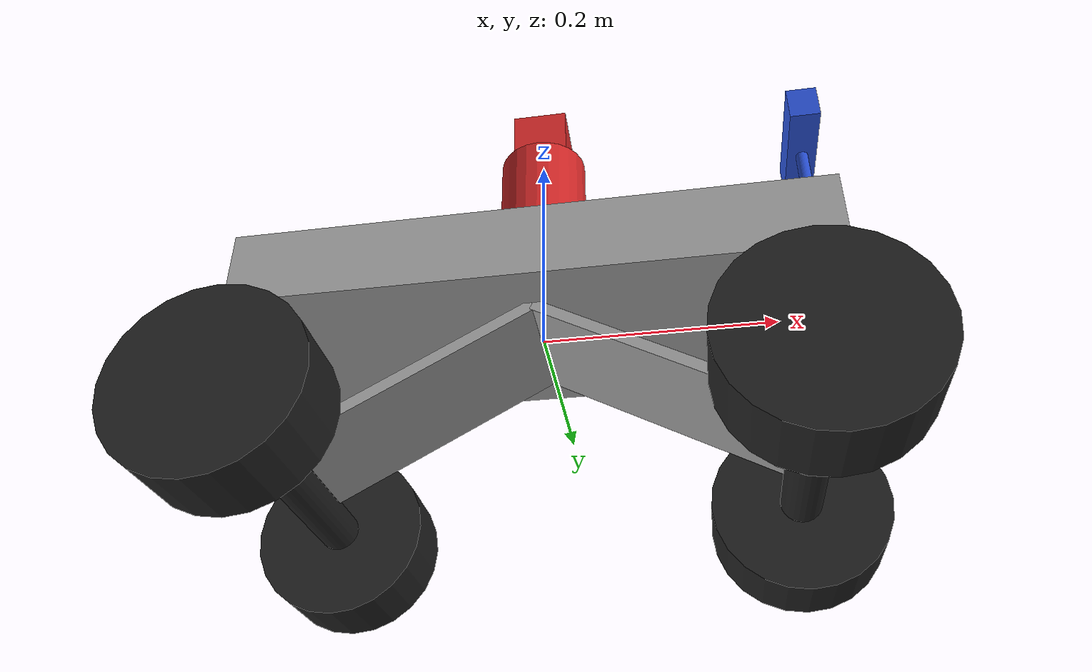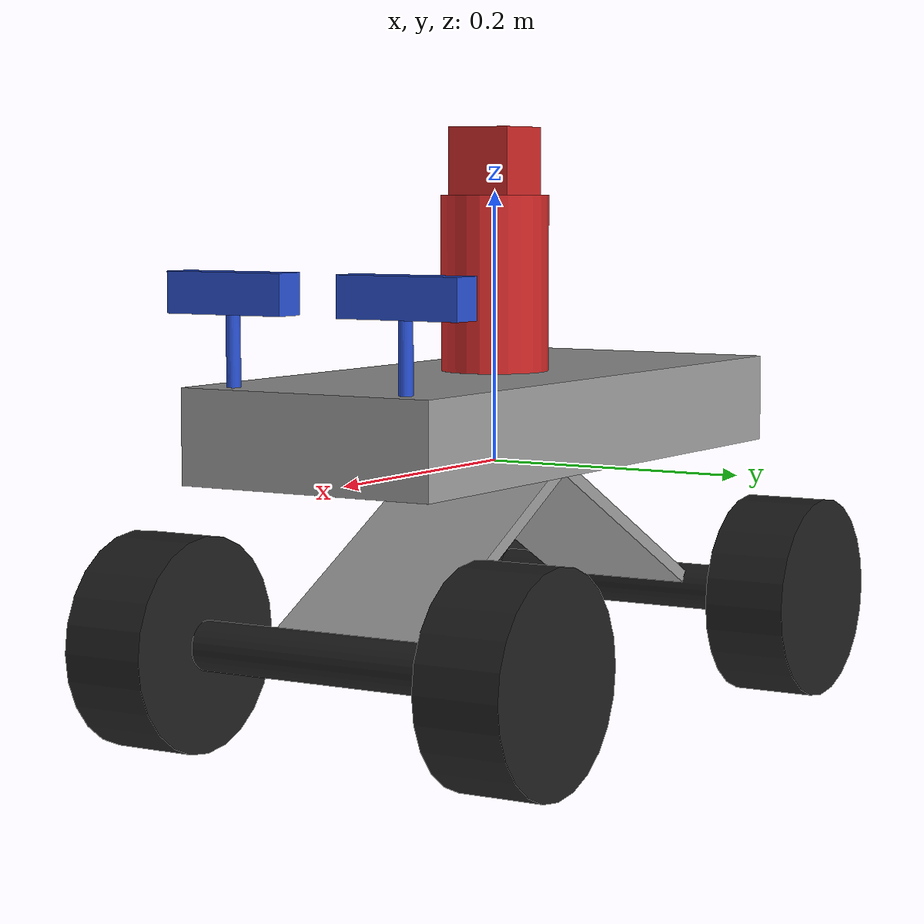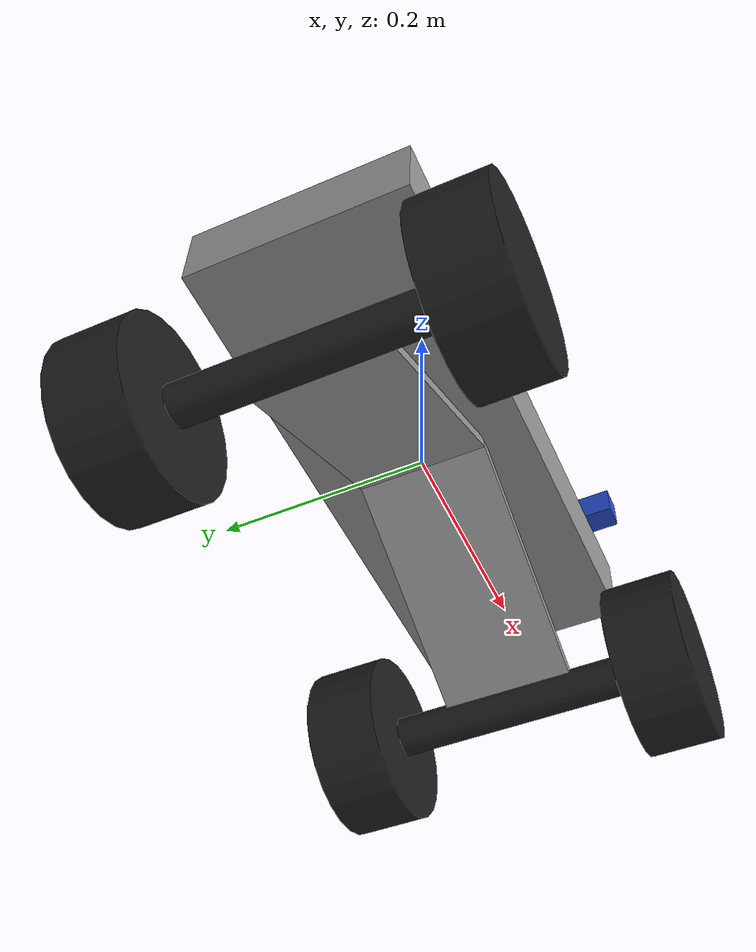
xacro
<?xml version="1.0"?>
<robot name="jetsoncar" xmlns:xacro="http://www.ros.org/wiki/xacro">

	<!-- X axis direction is forward, Y axis direction is left -->

	<xacro:include filename="$(find jetsoncar_description)/urdf/functions.xacro" />
	<xacro:include filename="$(find jetsoncar_description)/urdf/physical.xacro" />
	<xacro:include filename="$(find jetsoncar_description)/urdf/joints.xacro" />
	<xacro:include filename="$(find jetsoncar_description)/urdf/transmissions.xacro" />

	<link name="base_link" />

	<link name="imu">
		<visual>
			<material name="grey"/>
			<xacro:imu_geometry/>
		</visual>
		<collision>
			<xacro:imu_geometry/>
		</collision>
		<inertial>
			<xacro:imu_inertial/>
		</inertial>
	</link>
	<xacro:fixed_offset_joint parent="baseplate" child="imu" offset="0 0 ${imu_height/2}"/> <!-- because origin is in the center, we want the IMU to stand on the baseplate -->

	<link name="baseplate">
		<visual>
			<material name="acrylic"/>
			<xacro:baseplate_geometry/>
		</visual>
		<collision>
			<xacro:baseplate_geometry/>
		</collision>
		<inertial>
			<xacro:baseplate_inertial/>
		</inertial>
	</link>
	<xacro:fixed_offset_joint parent="base_link" child="baseplate" offset="0 0 0"/>

	<link name="front_mount">
		<visual>
			<material name="grey"/>
			<xacro:front_mount_geometry/>
		</visual>
		<collision>
			<xacro:front_mount_geometry/>
		</collision>
		<inertial>
			<xacro:front_mount_inertial/>
		</inertial>
	</link>
	<xacro:fixed_offset_joint parent="baseplate" child="front_mount" offset="${front_to_rear_wheel_center/4} 0 -${baseplate_to_wheel_center/2}"/>

	<link name="rear_mount">
		<visual>
			<material name="grey"/>
			<xacro:rear_mount_geometry/>
		</visual>
		<collision>
			<xacro:rear_mount_geometry/>
		</collision>
		<inertial>
			<xacro:rear_mount_inertial/>
		</inertial>
	</link>
	<xacro:fixed_offset_joint parent="baseplate" child="rear_mount" offset="-${front_to_rear_wheel_center/4} 0 -${baseplate_to_wheel_center/2}"/>

	<link name="front_shaft">
		<visual>
			<material name="black"/>
			<xacro:shaft_geometry/>
		</visual>
		<collision>
			<xacro:shaft_geometry/>
		</collision>
		<inertial>
			<xacro:shaft_inertial/>
		</inertial>
	</link>
	<xacro:fixed_offset_joint parent="front_mount" child="front_shaft" offset="${front_to_rear_wheel_center/4} 0 -${baseplate_to_wheel_center/2}"/>

	<link name="rear_shaft">
		<visual>
			<material name="black"/>
			<xacro:shaft_geometry/>
		</visual>
		<collision>
			<xacro:shaft_geometry/>
		</collision>
		<inertial>
			<xacro:shaft_inertial/>
		</inertial>
	</link>
	<xacro:fixed_offset_joint parent="rear_mount" child="rear_shaft" offset="-${front_to_rear_wheel_center/4} 0 -${baseplate_to_wheel_center/2}"/>

	<link name="front_right_hinge">
		<visual>
			<material name="white"/>
			<xacro:hinge_geometry/>
		</visual>
		<inertial>
			<xacro:hinge_inertial/>
		</inertial>
	</link>
	<xacro:hinge_joint parent="front_shaft" child="front_right_hinge" offset="0 -${left_to_right_wheel_center/2} 0"/>
	<xacro:hinge_transmission hinge="front_right_hinge"/>

	<link name="front_left_hinge">
		<visual>
			<material name="white"/>
			<xacro:hinge_geometry/>
		</visual>
		<inertial>
			<xacro:hinge_inertial/>
		</inertial>
	</link>
	<xacro:hinge_joint parent="front_shaft" child="front_left_hinge" offset="0 ${left_to_right_wheel_center/2} 0"/>
	<xacro:hinge_transmission hinge="front_left_hinge"/>

	<link name="front_right_wheel">
		<visual>
			<material name="black"/>
			<xacro:wheel_geometry/>
		</visual>
		<collision>
			<xacro:wheel_geometry/>
			<!-- mu=The friction coefficient, kp=Stiffness coefficient, kd=Dampening coefficient -->
		</collision>
		<inertial>
			<xacro:wheel_inertial/>
		</inertial>
	</link>
	<xacro:wheel_joint parent="front_right_hinge" child="front_right_wheel" offset="0 0 0"/>
	<xacro:wheel_transmission wheel="front_right_wheel"/>

	<link name="front_left_wheel">
		<visual>
			<material name="black"/>
			<xacro:wheel_geometry/>
		</visual>
		<collision>
			<xacro:wheel_geometry/>
			<!-- mu=The friction coefficient, kp=Stiffness coefficient, kd=Dampening coefficient -->
		</collision>
		<inertial>
			<xacro:wheel_inertial/>
		</inertial>
	</link>
	<xacro:wheel_joint parent="front_left_hinge" child="front_left_wheel" offset="0 0 0"/>
	<xacro:wheel_transmission wheel="front_left_wheel"/>

	<link name="rear_right_wheel">
		<visual>
			<material name="black"/>
			<xacro:wheel_geometry/>
		</visual>
		<collision>
			<xacro:wheel_geometry/>
			<!-- mu=The friction coefficient, kp=Stiffness coefficient, kd=Dampening coefficient -->
		</collision>
		<inertial>
			<xacro:wheel_inertial/>
		</inertial>
	</link>
	<xacro:wheel_joint parent="rear_shaft" child="rear_right_wheel" offset="0 -${left_to_right_wheel_center/2} 0"/>
	<xacro:wheel_transmission wheel="rear_right_wheel"/>

	<link name="rear_left_wheel">
		<visual>
			<material name="black"/>
			<xacro:wheel_geometry/>
		</visual>
		<collision>
			<xacro:wheel_geometry/>
			<!-- mu=The friction coefficient, kp=Stiffness coefficient, kd=Dampening coefficient -->
		</collision>
		<inertial>
			<xacro:wheel_inertial/>
		</inertial>
	</link>
	<xacro:wheel_joint parent="rear_shaft" child="rear_left_wheel" offset="0 ${left_to_right_wheel_center/2} 0"/>
	<xacro:wheel_transmission wheel="rear_left_wheel"/>

	<!-- Sensors -->
	<link name="left_camera_mount">
		<visual>
			<material name="blue"/>
			<xacro:camera_mount_geometry/>
		</visual>
		<collision>
			<xacro:camera_mount_geometry/>
		</collision>
		<inertial>
			<xacro:camera_mount_inertial/>
		</inertial>
	</link>
	<xacro:fixed_offset_joint parent="baseplate" child="left_camera_mount" offset="${baseplate_length/2-baseplate_frontedge_to_camera} ${camera_disparity/2} ${baseplate_thickness}"/>

	<link name="left_camera">
		<visual>
			<material name="blue"/>
			<xacro:camera_geometry/>
		</visual>
		<collision>
			<xacro:camera_geometry/>
		</collision>
		<inertial>
			<xacro:camera_inertial/>
		</inertial>
	</link>
	<xacro:fixed_offset_joint parent="left_camera_mount" child="left_camera" offset="0 0 ${camera_mount_height+camera_height/2}"/>

	<link name="right_camera_mount">
		<visual>
			<material name="blue"/>
			<xacro:camera_mount_geometry/>
		</visual>
		<collision>
			<xacro:camera_mount_geometry/>
		</collision>
		<inertial>
			<xacro:camera_mount_inertial/>
		</inertial>
	</link>
	<xacro:fixed_offset_joint parent="baseplate" child="right_camera_mount" offset="${baseplate_length/2-baseplate_frontedge_to_camera} -${camera_disparity/2} ${baseplate_thickness}"/>

	<link name="right_camera">
		<visual>
			<material name="blue"/>
			<xacro:camera_geometry/>
		</visual>
		<collision>
			<xacro:camera_geometry/>
		</collision>
		<inertial>
			<xacro:camera_inertial/>
		</inertial>
	</link>
	<xacro:fixed_offset_joint parent="right_camera_mount" child="right_camera" offset="0 0 ${camera_mount_height+camera_height/2}"/>

	<link name="lidar_mount">
		<visual>
			<material name="red"/>
			<xacro:lidar_mount_geometry/>
		</visual>
		<collision>
			<xacro:lidar_mount_geometry/>
		</collision>
		<inertial>
			<xacro:lidar_mount_inertial/>
		</inertial>
	</link>
	<xacro:fixed_offset_joint parent="baseplate" child="lidar_mount" offset="0 0 ${baseplate_thickness}"/>

	<link name="lidar">
		<visual>
			<material name="red"/>
			<xacro:lidar_geometry/>
		</visual>
		<collision>
			<xacro:lidar_geometry/>
		</collision>
		<inertial>
			<xacro:lidar_inertial/>
		</inertial>
	</link>
	<xacro:fixed_offset_joint parent="lidar_mount" child="lidar" offset="0 0 ${lidar_mount_height}"/>

	<!-- Link Gazebo and ROS - this has to happen as the last thing -->
	<xacro:include filename="$(find jetsoncar_description)/urdf/gazebo.xacro" />
	<xacro:include filename="$(find jetsoncar_description)/urdf/materials.xacro" />
</robot>

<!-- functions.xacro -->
<robot name="jetsoncar" xmlns:xacro="http://www.ros.org/wiki/xacro">

	<!-- Based on https://en.wikipedia.org/wiki/List_of_moments_of_inertia -->
	<xacro:macro name="box_inertial" params="mass width length height">
		<mass value="${mass}" />
		<inertia ixx="${1/12*mass*(width*width+height*height)}"
			 ixy="0"
			 ixz="0"
			 iyy="${1/12*mass*(length*length+height*height)}"
			 iyz="0"
			 izz="${1/12*mass*(width*width+length*length)}"
		/>
	</xacro:macro>

	<xacro:macro name="cylinder_inertial" params="mass radius length">
		<mass value="${mass}" />
		<inertia ixx="${1/12*mass*(3*radius*radius+length*length)}"
			 ixy="0"
			 ixz="0"
			 iyy="${1/12*mass*(3*radius*radius+length*length)}"
			 iyz="0"
			 izz="${1/2*mass*radius*radius}"
		/>
	</xacro:macro>

</robot>

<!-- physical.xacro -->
<robot name="jetsoncar" xmlns:xacro="http://www.ros.org/wiki/xacro">

	<!-- X axis direction is forward, Y axis direction is left -->

	<!-- IMU related properties -->
	<xacro:property name="imu_width" value="0.05" />
	<xacro:property name="imu_length" value="0.05" />
	<xacro:property name="imu_height" value="0.03" />

	<!-- Wheel related properties -->
	<xacro:property name="wheel_diameter" value="0.155" />
	<xacro:property name="wheel_thickness" value="0.064" />
	<xacro:property name="wheel_weight" value="0.150" />

	<!-- suspension stiffness, damping, and limits -->
	<xacro:property name="susp_travel" value="${wheel_diameter/2}"/>
	<xacro:property name="susp_lower" value="${-susp_travel/2}"/>
	<xacro:property name="susp_upper" value="${susp_travel/2}"/>
	<xacro:property name="susp_damping" value="70"/>
	<xacro:property name="susp_stiffness" value="5"/>
	<xacro:property name="susp_spring_center" value="0.05"/>

	<!-- RC car physical layout -->
	<xacro:property name="front_to_rear_wheel_center" value="0.42" />
	<xacro:property name="left_to_right_wheel_center" value="0.285" />
	<xacro:property name="baseplate_to_wheel_center" value="0.118" />
	<xacro:property name="front_to_rear_wheel_center" value="0.42" />
	<xacro:property name="front_to_rear_wheel_center" value="0.42" />

	<!-- Baseplate related properties -->
	<xacro:property name="baseplate_width" value="0.20" />
	<xacro:property name="baseplate_length" value="0.50" />
	<xacro:property name="baseplate_thickness" value="0.0675" />
	<xacro:property name="baseplate_weight" value="1.000" />

	<!-- Shaft and mount related properties -->
	<xacro:property name="mount_weight" value="0.500" />
	<xacro:property name="shaft_weight" value="0.100" />

	<!-- Camera related properties -->
	<xacro:property name="camera_width" value="0.094" />
	<xacro:property name="camera_height" value="0.029" />
	<xacro:property name="camera_depth" value="0.024" />
	<xacro:property name="camera_weight" value="0.162" />
	<xacro:property name="baseplate_frontedge_to_camera" value="0.02" />
	<xacro:property name="camera_mount_height" value="0.05" />
	<xacro:property name="camera_mount_diameter" value="0.01" />
	<xacro:property name="camera_disparity" value="0.14" />

	<!-- LiDAR related properties -->
	<xacro:property name="lidar_width" value="0.05" />
	<xacro:property name="lidar_length" value="0.05" />
	<xacro:property name="lidar_height" value="0.05" />
	<xacro:property name="lidar_weight" value="0.200" />
	<xacro:property name="lidar_mount_diameter" value="0.08" />
	<xacro:property name="lidar_mount_height" value="0.13" />

	<!-- Steering related properties -->
	<xacro:property name="steering_wheel_angle_limit" value="${20/180*pi}" />

	<!-- IMU -->
	<xacro:macro name="imu_geometry">
		<origin xyz="0 0 0" rpy="0 0 0" /> <!-- origin (0,0,0) is in the center of the box -->
		<geometry>
			<box size="${imu_length} ${imu_width} ${imu_height}"/> <!-- 50x50x30 mm, Please confirm against 3D drawings -->
		</geometry>
	</xacro:macro>
	<xacro:macro name="imu_inertial">
		<origin xyz="0 0 0" rpy="0 0 0" /> <!-- origin (0,0,0) is in the center of the box -->
		<xacro:box_inertial mass="0.010" length="${imu_length}" width="${imu_width}" height="${imu_height}" /> <!-- 10 grams -->
	</xacro:macro>

	<!-- Baseplate -->
	<xacro:macro name="baseplate_geometry">
		<origin xyz="0 0 ${baseplate_thickness/2}" rpy="0 0 0" /> <!-- origin (0,0,0) is in the center of the box, so place the origin of this in the bottom of baseplate -->
		<geometry>
			<box size="${baseplate_length} ${baseplate_width} ${baseplate_thickness}"/> <!-- 50x20x6.75 cm, X-axis is front of vehicle -->
		</geometry>
	</xacro:macro>
	<xacro:macro name="baseplate_inertial">
		<origin xyz="0 0 ${baseplate_thickness/2}" rpy="0 0 0" /> <!-- origin (0,0,0) is in the center of the box, so place the origin of this in the bottom of baseplate -->
		<xacro:box_inertial mass="${baseplate_weight}" length="${baseplate_length}" width="${baseplate_width}" height="${baseplate_thickness}" />
	</xacro:macro>

	<!-- Mount -->
	<xacro:macro name="front_mount_geometry">
		<origin xyz="0 0 0" rpy="0 0.5 0" /> <!-- origin (0,0,0) is in the center of the box -->
		<geometry>
			<box size="0.24 0.12 0.01"/>
		</geometry>
	</xacro:macro>
	<xacro:macro name="rear_mount_geometry">
		<origin xyz="0 0 0" rpy="0 -0.5 0" /> <!-- origin (0,0,0) is in the center of the box -->
		<geometry>
			<box size="0.24 0.12 0.01"/>
		</geometry>
	</xacro:macro>
	<xacro:macro name="front_mount_inertial">
		<origin xyz="0 0 0" rpy="0 0.5 0" /> <!-- origin (0,0,0) is in the center of the box -->
		<xacro:box_inertial mass="${mount_weight}" length="0.24" width="0.12" height="0.01" />
	</xacro:macro>
	<xacro:macro name="rear_mount_inertial">
		<origin xyz="0 0 0" rpy="0 -0.5 0" /> <!-- origin (0,0,0) is in the center of the box -->
		<xacro:box_inertial mass="${mount_weight}" length="0.24" width="0.12" height="0.01" />
	</xacro:macro>

	<!-- Shaft -->
	<xacro:macro name="shaft_geometry">
		<origin xyz="0 0 0" rpy="1.570796327 0 0" /> <!-- origin (0,0,0) is in the center of the cylinder -->
		<geometry>
			<cylinder length="${left_to_right_wheel_center}" radius="0.018"/> <!-- confirm length between wheels -->
		</geometry>
	</xacro:macro>
	<xacro:macro name="shaft_inertial">
		<origin xyz="0 0 0" rpy="1.570796327 0 0" /> <!-- origin (0,0,0) is in the center of the cylinder -->
		<xacro:cylinder_inertial mass="${shaft_weight}" radius="0.018" length="${left_to_right_wheel_center}" />
	</xacro:macro>

	<!-- Hinge -->
	<xacro:macro name="hinge_geometry">
		<origin xyz="0 0 0" rpy="0 0 0" />
		<geometry>
			<sphere radius="0.015"/>
		</geometry>
	</xacro:macro>
	<xacro:macro name="hinge_inertial">
		<origin xyz="0 0 0" rpy="0 0 0" />
		<mass value="0.05" />
		<inertia ixx="1e-6" ixy="0" ixz="0" iyy="1e-6" iyz="0" izz="1e-6" /> <!-- small inertia -->
	</xacro:macro>

	<!-- Wheel -->
	<xacro:macro name="wheel_geometry">
		<origin xyz="0 0 0" rpy="1.570796327 0 0" /> <!-- origin (0,0,0) is in the center of the cylinder -->
		<geometry>
			<cylinder length="${wheel_thickness}" radius="${wheel_diameter/2}"/>
		</geometry>
	</xacro:macro>
	<xacro:macro name="wheel_inertial">
		<origin xyz="0 0 0" rpy="1.570796327 0 0" /> <!-- origin (0,0,0) is in the center of the cylinder -->
		<xacro:cylinder_inertial mass="${wheel_weight}" radius="${wheel_diameter/2}" length="${wheel_thickness}" />
	</xacro:macro>

	<!-- Camera -->
	<xacro:macro name="camera_mount_geometry">
		<origin xyz="0 0 ${camera_mount_height/2}" rpy="0 0 0" /> <!-- origin (0,0,0) is in the center of the box -->
		<geometry>
			<cylinder length="${camera_mount_height}" radius="${camera_mount_diameter/2}"/> <!-- confirm length between wheels -->
		</geometry>
	</xacro:macro>
	<xacro:macro name="camera_mount_inertial">
		<origin xyz="0 0 0" rpy="0 0 0" /> <!-- origin (0,0,0) is in the center of the box -->
		<mass value="0.005" /> <!-- 5 grams -->
		<inertia ixx="1e-6" ixy="0" ixz="0" iyy="1e-6" iyz="0" izz="1e-6" /> <!-- small inertia -->
	</xacro:macro>

	<xacro:macro name="camera_geometry">
		<origin xyz="0 0 0" rpy="0 0 0" /> <!-- origin (0,0,0) is in the center of the box -->
		<geometry>
			<box size="${camera_depth} ${camera_width} ${camera_height}"/>
		</geometry>
	</xacro:macro>
	<xacro:macro name="camera_inertial">
		<origin xyz="0 0 0" rpy="0 0 0" /> <!-- origin (0,0,0) is in the center of the box -->
		<xacro:box_inertial mass="${camera_weight}" length="${camera_depth}" width="${camera_width}" height="${camera_height}" />
	</xacro:macro>

	<!-- LiDAR -->
	<xacro:macro name="lidar_mount_geometry">
		<origin xyz="0 0 ${lidar_mount_height/2}" rpy="0 0 0" /> <!-- origin (0,0,0) is in the center of the box -->
		<geometry>
			<cylinder length="${lidar_mount_height}" radius="${lidar_mount_diameter/2}"/> <!-- confirm length between wheels -->
		</geometry>
	</xacro:macro>
	<xacro:macro name="lidar_mount_inertial">
		<origin xyz="0 0 0" rpy="0 0 0" /> <!-- origin (0,0,0) is in the center of the box -->
		<mass value="0.020" />
		<inertia ixx="1e-7" ixy="0" ixz="0" iyy="1e-7" iyz="0" izz="1e-7" />
	</xacro:macro>

	<xacro:macro name="lidar_geometry">
		<origin xyz="0 0 ${lidar_height/2}" rpy="0 0 0" /> <!-- origin (0,0,0) is in the center of the box -->
		<geometry>
			<box size="${lidar_length} ${lidar_width} ${lidar_height}"/>
		</geometry>
	</xacro:macro>
	<xacro:macro name="lidar_inertial">
		<origin xyz="0 0 0" rpy="0 0 0" /> <!-- origin (0,0,0) is in the center of the box -->
		<xacro:box_inertial mass="${lidar_weight}" length="${lidar_length}" width="${lidar_width}" height="${lidar_height}" />
	</xacro:macro>

</robot>

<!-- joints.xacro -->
<robot name="jetsoncar" xmlns:xacro="http://www.ros.org/wiki/xacro">

	<xacro:macro name="fixed_offset_joint" params="parent child offset">
		<joint name="${parent}_to_${child}" type="fixed">
			<parent link="${parent}"/>
			<child link="${child}"/>
			<origin xyz="${offset}" rpy="0 0 0" /> <!-- offset from parent to child, so with direction based in parent frame -->
		</joint>
	</xacro:macro>

	<xacro:macro name="dampener_joint" params="parent child offset">
		<joint name="${parent}_to_${child}" type="prismatic">
			<parent link="${parent}"/>
			<child link="${child}"/>
			<origin xyz="${offset}" rpy="0 0 0" /> <!-- offset from parent to child, so with direction based in parent frame -->
			<axis xyz="0 0 -1"/> <!-- suspension works up and down -->
			<limit lower="${susp_lower}" upper="${susp_upper}" effort="0" velocity="0"/>
		        <dynamics damping="${susp_damping}" spring_stiffness="${susp_stiffness}" spring_reference="${susp_spring_center}"/>
			<physics>
				<ode>
					<implicit_spring_damper>0</implicit_spring_damper>
				</ode>
			</physics>
		</joint>
	</xacro:macro>

	<xacro:macro name="hinge_joint" params="parent child offset">
		<joint name="${child}_joint" type="revolute"> <!-- revolute is a joint with a range limited motion around its' axis -->
			<parent link="${parent}"/>
			<child link="${child}"/>
			<origin xyz="${offset}" rpy="0 0 0" /> <!-- offset from parent to child, so with direction based in parent frame -->
			<axis xyz="0 0 1"/>
	    		<limit lower="-${steering_wheel_angle_limit}" upper="${steering_wheel_angle_limit}" effort="10" velocity="100"/> <!-- effeort is similar to torque/acceleration -->
			<!-- friction - The physical static friction. For prismatic joints, the units are Newtons. For revolving joints, the units are Newton meters. -->
			<!-- damping - The physical damping value. For prismatic joints, the units are Newton seconds per meter. For revolving joints, Newton meter secons per radian. -->
		</joint>
	</xacro:macro>

	<xacro:macro name="wheel_joint" params="parent child offset">
		<joint name="${child}_joint" type="continuous"> <!-- continuous is a joint of continous motion around its' axis -->
			<parent link="${parent}"/>
			<child link="${child}"/>
			<origin xyz="${offset}" rpy="0 0 0" /> <!-- offset from parent to child, so with direction based in parent frame -->
			<axis xyz="0 1 0"/>
			<!-- friction - The physical static friction. For prismatic joints, the units are Newtons. For revolving joints, the units are Newton meters. -->
			<!-- damping - The physical damping value. For prismatic joints, the units are Newton seconds per meter. For revolving joints, Newton meter secons per radian. -->
			<limit effort="10" velocity="100"/>
		</joint>
	</xacro:macro>

</robot>
